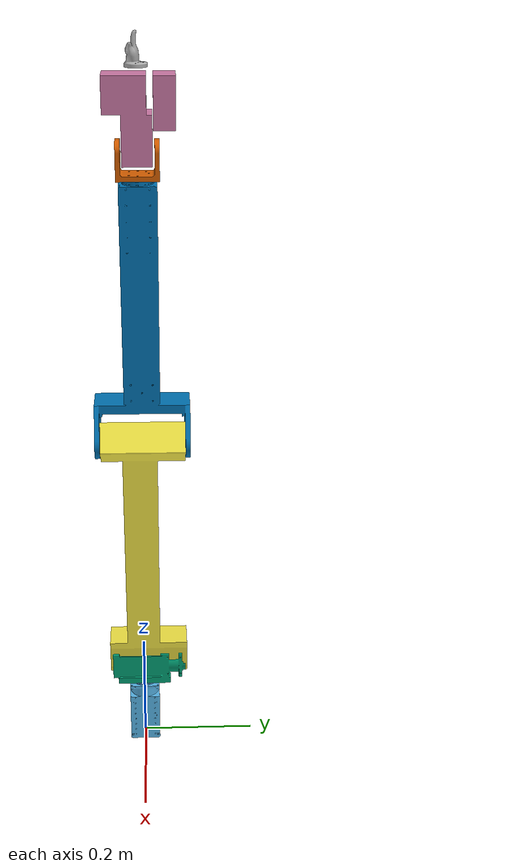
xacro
<?xml version="1.0"?>
<robot name="dyn_ef_robot"
  xmlns:xacro="http://www.ros.org/wiki/xacro">

  <!-- Import all Gazebo-customization elements, including Gazebo colors -->
  <xacro:include filename="$(find dynamic_end_effector)/urdf/dynamic-ef.gazebo" />

  <!-- RViz-only colors -->
  <material name="red">
    <color rgba="1.0 0 0 1.0"/>
  </material>
  <material name="blue">
    <color rgba="0 0 0.8 1"/>
  </material>

  <!-- some properties for the urdf file -->
  <xacro:property name="height" value="0.0" />
  <xacro:property name="camera_link_size" value="0.01" /> <!-- Size of square 'camera' box -->

  <!-- inertias for all links -->
  <xacro:macro name="default_inertial" params="mass">
    <inertial>
      <mass value="${mass}" />
      <inertia ixx="1.0" ixy="0.0" ixz="0.0" iyy="1.0" iyz="0.0" izz="1.0" />
    </inertial>
  </xacro:macro>

  <!-- interface between moveit and real robot controllers -->
  <xacro:macro name="transmission_block" params="joint_name">
    <transmission name="trans_${joint_name}">
      <type>transmission_interface/SimpleTransmission</type>
      <joint name="${joint_name}">
        <hardwareInterface>hardware_interface/VelocityJointInterface</hardwareInterface>
      </joint>
      <actuator name="motor_${joint_name}">
        <hardwareInterface>hardware_interface/VelocityJointInterface</hardwareInterface>
        <mechanicalReduction>1</mechanicalReduction>
      </actuator>
    </transmission>
  </xacro:macro>

  <!--  ##################### start listing links and joints  ##############################  -->
  <link name="world"/>

  <joint name="fixy" type="fixed">
    <parent link="world"/>
    <child link="base_link"/>
  </joint>

  <link name="base_link">
    <visual>
      <origin xyz="0 0 0.09" rpy="${pi/2.0} 0 0" />
      <geometry>
        <mesh filename="package://dynamic_end_effector/meshes/h54-200-s500-r.stl" scale="0.001 0.001 0.001"/>
      </geometry>
    </visual>
    <collision>
      <origin xyz="0 0 0.09" rpy="${pi/2.0} 0 0" />
      <geometry>
        <mesh filename="package://dynamic_end_effector/meshes/h54-200-s500-r_simple.stl" scale="0.001 0.001 0.001"/>
      </geometry>
    </collision>
    <xacro:default_inertial mass="0.8"/>
  </link>

  <joint name="base_link_to_base_yaw_link_joint" type="revolute">
    <parent link="base_link"/>
    <child link="base_yaw_link"/>
    <origin xyz="0 0 0.126" rpy="0 0 0" />
    <axis xyz="0 0 1"/>
    <dynamics damping="1.0" friction="5.0"/>
    <limit upper="${2.0}" lower="${-2.0}" effort="45" velocity="5"/>
  </joint>

  <xacro:transmission_block joint_name="base_link_to_base_yaw_link_joint"/>

  <link name="base_yaw_link">
    <visual>
      <origin xyz="0 0 0" rpy="0 ${-pi} 0" />
      <geometry>
        <mesh filename="package://dynamic_end_effector/meshes/assembly_link2.stl" scale="0.001 0.001 0.001"/>
      </geometry>
    </visual>
    <collision>
      <origin xyz="0 0 0" rpy="0 ${-pi} 0" />
      <geometry>
        <mesh filename="package://dynamic_end_effector/meshes/assembly_link2_simple.stl" scale="0.001 0.001 0.001"/>
      </geometry>
    </collision>
    <inertial>
      <mass value="10"/>
      <inertia ixx="0.01" ixy="0.01" ixz="0.01" iyy="0.01" iyz="0.01" izz="0.01"/>
    </inertial>
    <xacro:default_inertial mass="0.8"/>
  </link>

  <joint name="base_yaw_link_to_first_link_joint" type="revolute">
    <parent link="base_yaw_link"/>
    <child link="first_link"/>
    <origin xyz="0 0 0.0392"/>
    <axis xyz="0 1 0"/>
    <dynamics damping="1.0" friction="1.0"/>
    <limit upper="2.0" lower="-2.0" effort="45" velocity="5"/>
  </joint>

  <xacro:transmission_block joint_name="base_yaw_link_to_first_link_joint"/>

  <link name="first_link">
    <visual>
      <origin xyz="0 0 0" rpy="0 0 ${-pi/2}" />
      <geometry>
        <mesh filename="package://dynamic_end_effector/meshes/assembly_arm_1.stl" scale="0.001 0.001 0.001"/>
      </geometry>
    </visual>
    <collision>
      <origin xyz="0 0 0" rpy="0 0 ${-pi/2}" />
      <geometry>
        <mesh filename="package://dynamic_end_effector/meshes/assembly_arm_1_simple.stl" scale="0.001 0.001 0.001"/>
      </geometry>
    </collision>
    <xacro:default_inertial mass="2"/>
  </link>

  <joint name="first_link_to_second_link_joint" type="revolute">
    <parent link="first_link"/>
    <child link="second_link"/>
    <origin xyz="0.034613 0.00625 0.457247"/>
    <axis xyz="0 1 0"/>
    <dynamics damping="1.0" friction="5.0"/>
    <limit lower="${-pi/4}" upper="${pi}" effort="45" velocity="5"/>
  </joint>

  <xacro:transmission_block joint_name="first_link_to_second_link_joint"/>

  <link name="second_link">
    <visual>
      <origin xyz="0 0 0" rpy="0 0 ${pi/2}" />
      <geometry>
        <mesh filename="package://dynamic_end_effector/meshes/assembly_arm_2.stl" scale="0.001 0.001 0.001"/>
      </geometry>
    </visual>
    <collision>
      <origin xyz="0 0 0" rpy="0 0 ${pi/2}" />
      <geometry>
        <mesh filename="package://dynamic_end_effector/meshes/assembly_arm_2_simple.stl" scale="0.001 0.001 0.001"/>
      </geometry>
    </collision>
    <xacro:default_inertial mass="1"/>
  </link>

  <joint name="second_link_to_third_link_joint" type="revolute">
    <parent link="second_link"/>
    <child link="third_link"/>
    <origin xyz="-0.031 -0.001 0.422"/>
    <axis xyz="0 0 1"/>
    <dynamics damping="1.0" friction="5.0"/>
    <limit upper="${3*pi/2}" lower="${-pi/2}" effort="45" velocity="5"/>
  </joint>

  <xacro:transmission_block joint_name="second_link_to_third_link_joint"/>

  <link name="third_link">
    <visual>
      <origin xyz="0 0 0" rpy="${pi/2} 0 0" />
      <geometry>
        <mesh filename="package://dynamic_end_effector/meshes/frame_mx108.stl" scale="0.001 0.001 0.001"/>
      </geometry>
    </visual>
    <collision>
      <origin xyz="0 0 0" rpy="${pi/2} 0 0" />
      <geometry>
        <mesh filename="package://dynamic_end_effector/meshes/frame_mx108_simple.stl" scale="0.001 0.001 0.001"/>
      </geometry>
    </collision>
    <xacro:default_inertial mass="0.1"/>
  </link>

  <joint name="third_link_to_fourth_link_joint" type="revolute">
    <parent link="third_link"/>
    <child link="fourth_link"/>
    <origin xyz="0 0 0.037"/>
    <axis xyz="0 1 0"/>
    <dynamics damping="1.0" friction="5.0"/>
    <limit upper="1.8" lower="-1.8" effort="45" velocity="5"/>
  </joint>

  <xacro:transmission_block joint_name="third_link_to_fourth_link_joint"/>

  <link name="fourth_link">
    <visual>
      <origin xyz="0 0 0" rpy="${-pi/2} 0 ${pi/2}" />
      <geometry>
        <mesh filename="package://dynamic_end_effector/meshes/assembly_hand.stl" scale="0.001 0.001 0.001"/>
      </geometry>
    </visual>
    <collision>
      <origin xyz="0 0 0" rpy="${-pi/2} 0 ${pi/2}" />
      <geometry>
        <mesh filename="package://dynamic_end_effector/meshes/assembly_hand_simple.stl" scale="0.001 0.001 0.001"/>
      </geometry>
    </collision>
    <xacro:default_inertial mass="0.3"/>
  </link>

  <joint name="fourth_link_to_fifth_link_joint" type="revolute">
    <parent link="fourth_link"/>
    <child link="fifth_link"/>
    <origin xyz="0 0.0005 0.1233"/>
    <axis xyz="0 0 1"/>
    <dynamics damping="1.0" friction="5.0"/>
    <limit upper="${pi*2}" lower="${-pi*2}" effort="45" velocity="5"/>
  </joint>

  <xacro:transmission_block joint_name="fourth_link_to_fifth_link_joint"/>

  <link name="fifth_link">
    <visual>
      <origin xyz="0.004143 -0.006953 0.004" rpy="0 0 0" />
      <geometry>
        <mesh filename="package://dynamic_end_effector/meshes/Pointing_Finger2.stl" scale="0.001 0.001 0.001"/>
      </geometry>
    </visual>
    <collision>
      <origin xyz="0.004143 -0.006953 0.004" rpy="0 0 0" />
      <geometry>
        <mesh filename="package://dynamic_end_effector/meshes/Pointing_Finger2_simple.stl" scale="0.001 0.001 0.001"/>
      </geometry>
    </collision>
    <xacro:default_inertial mass="0.01"/>
  </link>

  <!-- fixed camera joint -->
  <joint name="camera_joint" type="fixed">
    <origin xyz="0 0.041 ${camera_link_size/2 + 0.099666}" rpy="0 ${-pi/2} ${-pi/2}"/>
    <parent link="fourth_link"/>
    <child link="camera_link"/>
  </joint>

  <!-- Camera -->
  <link name="camera_link">
    <visual>
      <origin xyz="0 0 0" rpy="0 0 0"/>
      <geometry>
        <box size="${camera_link_size} ${camera_link_size} ${camera_link_size}"/>
      </geometry>
    </visual>
    <collision>
      <origin xyz="0 0 0" rpy="0 0 0"/>
      <geometry>
        <box size="${camera_link_size} ${camera_link_size} ${camera_link_size}"/>
      </geometry>
    </collision>
    <inertial>
      <mass value="1e-5" />
      <origin xyz="0 0 0" rpy="0 0 0"/>
      <inertia ixx="1e-6" ixy="0" ixz="0" iyy="1e-6" iyz="0" izz="1e-6" />
    </inertial>
  </link>

</robot>
